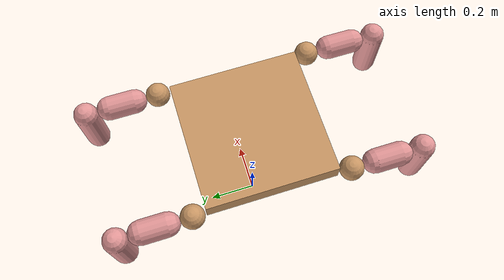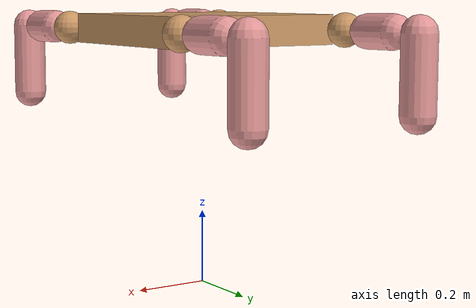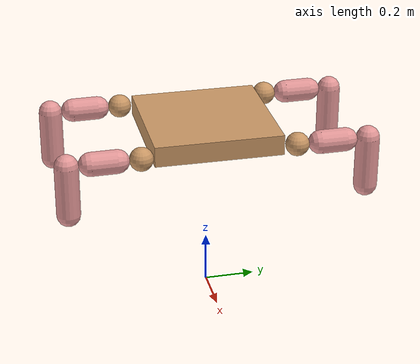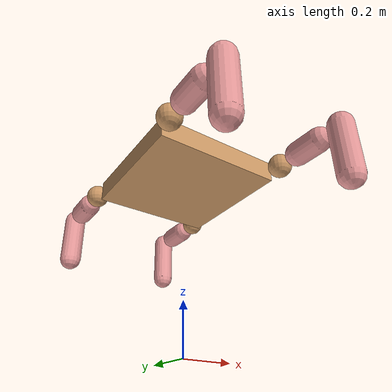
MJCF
<mujoco model="cheetah">
  <compiler angle="radian" coordinate="local" inertiafromgeom="true" settotalmass="14"/>
  <default>
    <joint armature=".1" damping=".01" limited="true" solimplimit="0 .8 .03" solreflimit=".02 1" stiffness="8"/>
    <geom conaffinity="0" condim="3" contype="1" friction="0.4 .1 .1" rgba="0.8 0.6 .4 1" solimp="0.0 0.8 0.01" solref="0.02 1"/>
    <motor ctrllimited="true" ctrlrange="-1 1"/>
  </default>
  <size nstack="300000" nuser_geom="1"/>
  <option gravity="0 0 -9.81" timestep="0.01"/>
  <worldbody>
    <body name="torso" pos="0 0 .7">
      <joint armature="0" axis="1 0 0" damping="0" limited="false" name="ignorex" pos="0 0 0" stiffness="0" type="slide"/>
      <joint armature="0" axis="0 0 1" damping="0" limited="false" name="ignorez" pos="0 0 0" stiffness="0" type="slide"/>
      <joint armature="0" axis="0 1 0" damping="0" limited="false" name="ignorey" pos="0 0 0" stiffness="0" type="hinge"/>
      <geom name="torso" size=".25 .25 .04" type="box"/>
      <body name="bthigh" pos="-.25 -.30 0" euler="0 0 0">
        <joint axis="0 0 1" damping="6" name="bthigh" pos="0 0 0" range="-1.57 1.57" stiffness="240" type="hinge"/>
        <geom axisangle="0 0 1 0" name="bthigh" pos="0 0 0" size="0.046 .145" type="sphere"/>
        <body name="bshin" pos="0 -.1 0" euler="0 0 0">
          <joint axis="1 0 0" damping="4.5" name="bshin" pos="0 0 0" range="-.87 .87" stiffness="180" type="hinge"/>
          <geom axisangle="1 0 0 20.43" name="bshin" pos="0 -.04 0" rgba="0.9 0.6 0.6 1" size="0.046 .05" type="capsule"/>
          <body name="bfoot" pos="0 -.18 0">
            <joint axis="1 0 0" damping="3" name="bfoot" pos="0 0 0" range="-1.57 1.57" stiffness="240" type="hinge"/>
            <geom axisangle="0 1 0 0" name="bfoot" pos="0 0 -.10" rgba="0.9 0.6 0.6 1" size="0.046 .10" type="capsule"/>
          </body>
        </body>
      </body>
      <body name="fthigh" pos=".25 .3 0">
        <joint axis="0 0 1" damping="6" name="fthigh" pos="0 0 0" range="-1.57 1.57" stiffness="240" type="hinge"/>
        <geom axisangle="0 0 1 0" name="fthigh" pos="0 0 0" size="0.046 .145" type="sphere"/>
        <body name="fshin" pos="0 .1 0">
          <joint axis="1 0 0" damping="4.5" name="fshin" pos="0 0 0" range="-1.57 1.57" stiffness="240" type="hinge"/>
          <geom axisangle="1 0 0 20.43" name="fshin" pos="0 .04 0" rgba="0.9 0.6 0.6 1" size="0.046 .05" type="capsule"/>
          <body name="ffoot" pos="0 .18 0">
            <joint axis="1 0 0" damping="3" name="ffoot" pos="0 0 0" range="-1.57 1.57" stiffness="240" type="hinge"/>
            <geom axisangle="0 1 0 0" name="ffoot" pos="0 0 -.10" rgba="0.9 0.6 0.6 1" size="0.046 .10" type="capsule"/>
          </body>
        </body>
      </body>
      <body name="bthigh1" pos="-.25 .30 0">
        <joint axis="0 0 1" damping="6" name="bthigh1" pos="0 0 0" range="-1.57 1.57" stiffness="240" type="hinge"/>
        <geom axisangle="0 0 1 0" name="bthigh1" pos="0 0 0" size="0.046 .145" type="sphere"/>
        <body name="bshin1" pos="0 .1 0">
          <joint axis="1 0 0" damping="4.5" name="bshin1" pos="0 0 0" range="-.87 .87" stiffness="180" type="hinge"/>
          <geom axisangle="1 0 0 20.43" name="bshin1" pos="0 .04 0" rgba="0.9 0.6 0.6 1" size="0.046 .05" type="capsule"/>
          <body name="bfoot1" pos="0 .18 0">
            <joint  axis="1 0 0" damping="3" name="bfoot1" pos="0 0 0" range="-1.57 1.57" stiffness="240" type="hinge"/>
            <geom axisangle="0 1 0 0" name="bfoot1" pos="0 0 -.10" rgba="0.9 0.6 0.6 1" size="0.046 .10" type="capsule"/>
          </body>
        </body>
      </body>
      <body name="fthigh1" pos=".25 -.3 0">
        <joint axis="0 0 1" damping="6" name="fthigh1" pos="0 0 0" range="-1.57 1.57" stiffness="240" type="hinge"/>
        <geom axisangle="0 0 1 0" name="fthigh1" pos="0 0 0" size="0.046 .145" type="sphere"/>
        <body name="fshin1" pos="0 -.1 0">
          <joint axis="1 0 0" damping="4.5" name="fshin1" pos="0 0 0" range="-1.57 1.57" stiffness="240" type="hinge"/>
          <geom axisangle="1 0 0 20.43" name="fshin1" pos="0 -.04 0" rgba="0.9 0.6 0.6 1" size="0.046 .05" type="capsule"/>
          <body name="ffoot1" pos="0 -.18 0">
            <joint axis="1 0 0" damping="3" name="ffoot1" pos="0 0 0" range="-1.57 1.57" stiffness="240" type="hinge"/>
            <geom axisangle="0 1 0 0" name="ffoot1" pos="0 0 -.10" rgba="0.9 0.6 0.6 1" size="0.046 .10" type="capsule"/>
          </body>
        </body>
      </body>
    </body>
  </worldbody>
  <actuator>
    <motor gear="60" joint="bthigh" name="bthigh"/>
    <motor gear="60" joint="bshin" name="bshin"/>
    <motor gear="60" joint="bfoot" name="bfoot"/>
    <motor gear="60" joint="fthigh" name="fthigh"/>
    <motor gear="60" joint="fshin" name="fshin"/>
    <motor gear="60" joint="ffoot" name="ffoot"/>
    <motor gear="60" joint="bthigh1" name="bthigh1"/>
    <motor gear="60" joint="bshin1" name="bshin1"/>
    <motor gear="60" joint="bfoot1" name="bfoot1"/>
    <motor gear="60" joint="fthigh1" name="fthigh1"/>
    <motor gear="60" joint="fshin1" name="fshin1"/>
    <motor gear="60" joint="ffoot1" name="ffoot1"/>
  </actuator>
</mujoco>
